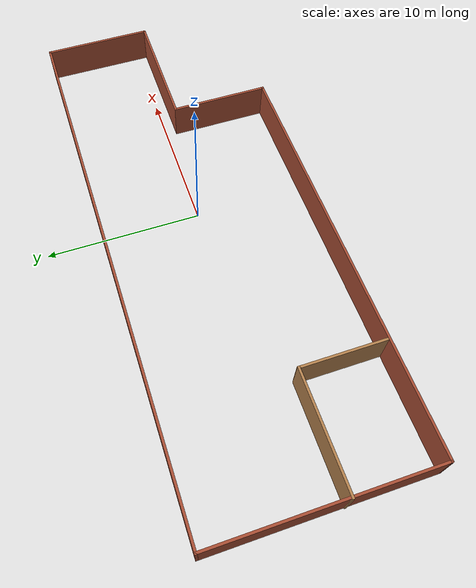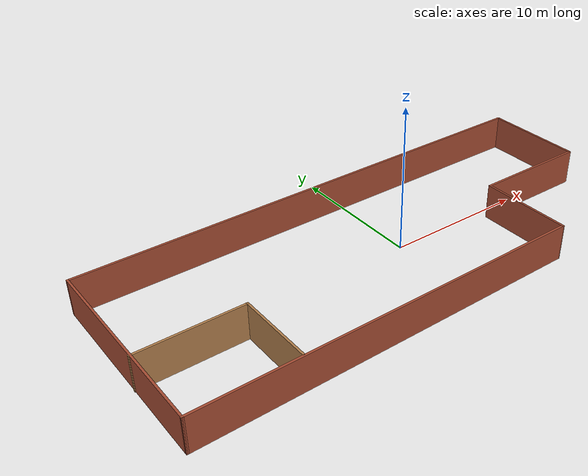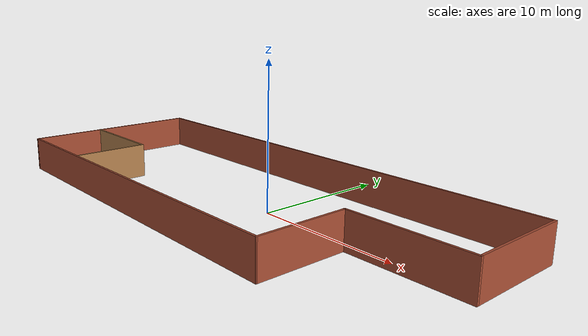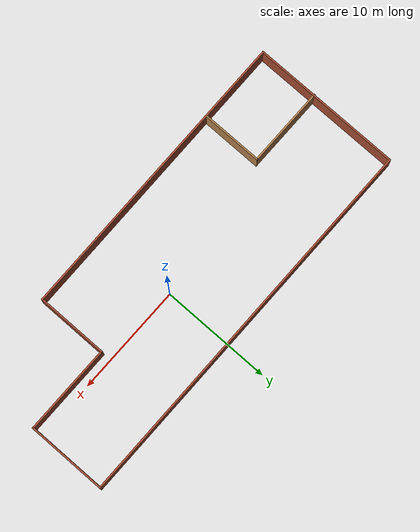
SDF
<?xml version='1.0'?>
<sdf version='1.6'>
  <model name='building2'>
    <pose frame=''>-2.21683 -0.459701 0 0 -0 0</pose>
    <link name='Wall_0'>
      <collision name='Wall_0_Collision'>
        <geometry>
          <box>
            <size>13.75 0.15 2.5</size>
          </box>
        </geometry>
        <pose frame=''>0 0 1.25 0 -0 0</pose>
      </collision>
      <visual name='Wall_0_Visual'>
        <pose frame=''>0 0 1.25 0 -0 0</pose>
        <geometry>
          <box>
            <size>13.75 0.15 2.5</size>
          </box>
        </geometry>
        <material>
          <script>
            <uri>file://media/materials/scripts/gazebo.material</uri>
            <name>Gazebo/Bricks</name>
          </script>
          <ambient>1 1 1 1</ambient>
        </material>
        <meta>
          <layer>0</layer>
        </meta>
      </visual>
      <pose frame=''>-17.5267 0.000207 0 0 -0 1.5708</pose>
    </link>
    <link name='Wall_1'>
      <collision name='Wall_1_Collision'>
        <geometry>
          <box>
            <size>35.25 0.15 2.5</size>
          </box>
        </geometry>
        <pose frame=''>0 0 1.25 0 -0 0</pose>
      </collision>
      <visual name='Wall_1_Visual'>
        <pose frame=''>0 0 1.25 0 -0 0</pose>
        <geometry>
          <box>
            <size>35.25 0.15 2.5</size>
          </box>
        </geometry>
        <material>
          <script>
            <uri>file://media/materials/scripts/gazebo.material</uri>
            <name>Gazebo/Bricks</name>
          </script>
          <ambient>1 1 1 1</ambient>
        </material>
        <meta>
          <layer>0</layer>
        </meta>
      </visual>
      <pose frame=''>0.023261 6.80021 0 0 -0 0</pose>
    </link>
    <link name='Wall_2'>
      <collision name='Wall_2_Collision'>
        <geometry>
          <box>
            <size>7.25 0.15 2.5</size>
          </box>
        </geometry>
        <pose frame=''>0 0 1.25 0 -0 0</pose>
      </collision>
      <visual name='Wall_2_Visual'>
        <pose frame=''>0 0 1.25 0 -0 0</pose>
        <geometry>
          <box>
            <size>7.25 0.15 2.5</size>
          </box>
        </geometry>
        <material>
          <script>
            <uri>file://media/materials/scripts/gazebo.material</uri>
            <name>Gazebo/Bricks</name>
          </script>
          <ambient>1 1 1 1</ambient>
        </material>
        <meta>
          <layer>0</layer>
        </meta>
      </visual>
      <pose frame=''>17.5733 3.25021 0 0 -0 -1.5708</pose>
    </link>
    <link name='Wall_3'>
      <collision name='Wall_3_Collision'>
        <geometry>
          <box>
            <size>8.25 0.15 2.5</size>
          </box>
        </geometry>
        <pose frame=''>0 0 1.25 0 -0 0</pose>
      </collision>
      <visual name='Wall_3_Visual'>
        <pose frame=''>0 0 1.25 0 -0 0</pose>
        <geometry>
          <box>
            <size>8.25 0.15 2.5</size>
          </box>
        </geometry>
        <material>
          <script>
            <uri>file://media/materials/scripts/gazebo.material</uri>
            <name>Gazebo/Bricks</name>
          </script>
          <ambient>1 1 1 1</ambient>
        </material>
        <meta>
          <layer>0</layer>
        </meta>
      </visual>
      <pose frame=''>13.5233 -0.299793 0 0 -0 3.14159</pose>
    </link>
    <link name='Wall_4'>
      <collision name='Wall_4_Collision'>
        <geometry>
          <box>
            <size>6.5 0.15 2.5</size>
          </box>
        </geometry>
        <pose frame=''>0 0 1.25 0 -0 0</pose>
      </collision>
      <visual name='Wall_4_Visual'>
        <pose frame=''>0 0 1.25 0 -0 0</pose>
        <geometry>
          <box>
            <size>6.5 0.15 2.5</size>
          </box>
        </geometry>
        <material>
          <script>
            <uri>file://media/materials/scripts/gazebo.material</uri>
            <name>Gazebo/Bricks</name>
          </script>
          <ambient>1 1 1 1</ambient>
        </material>
        <meta>
          <layer>0</layer>
        </meta>
      </visual>
      <pose frame=''>9.47326 -3.47479 0 0 -0 -1.5708</pose>
    </link>
    <link name='Wall_5'>
      <collision name='Wall_5_Collision'>
        <geometry>
          <box>
            <size>27.1504 0.15 2.5</size>
          </box>
        </geometry>
        <pose frame=''>0 0 1.25 0 -0 0</pose>
      </collision>
      <visual name='Wall_5_Visual'>
        <pose frame=''>0 0 1.25 0 -0 0</pose>
        <geometry>
          <box>
            <size>27.1504 0.15 2.5</size>
          </box>
        </geometry>
        <material>
          <script>
            <uri>file://media/materials/scripts/gazebo.material</uri>
            <name>Gazebo/Bricks</name>
          </script>
          <ambient>1 1 1 1</ambient>
        </material>
        <meta>
          <layer>0</layer>
        </meta>
      </visual>
      <pose frame=''>-4.02674 -6.72479 0 0 -0 -3.13604</pose>
    </link>
    <link name='Wall_7'>
      <collision name='Wall_7_Collision'>
        <geometry>
          <box>
            <size>7.25 0.15 2.5</size>
          </box>
        </geometry>
        <pose frame=''>0 0 1.25 0 -0 0</pose>
      </collision>
      <visual name='Wall_7_Visual'>
        <pose frame=''>0 0 1.25 0 -0 0</pose>
        <geometry>
          <box>
            <size>7.25 0.15 2.5</size>
          </box>
        </geometry>
        <material>
          <script>
            <uri>file://media/materials/scripts/gazebo.material</uri>
            <name>Gazebo/Wood</name>
          </script>
          <ambient>1 1 1 1</ambient>
        </material>
        <meta>
          <layer>0</layer>
        </meta>
      </visual>
      <pose frame=''>-14.0233 -1.30997 0 0 -0 0</pose>
    </link>
    <link name='Wall_8'>
      <collision name='Wall_8_Collision'>
        <geometry>
          <box>
            <size>5.5 0.15 2.5</size>
          </box>
        </geometry>
        <pose frame=''>0 0 1.25 0 -0 0</pose>
      </collision>
      <visual name='Wall_8_Visual'>
        <pose frame=''>0 0 1.25 0 -0 0</pose>
        <geometry>
          <box>
            <size>5.5 0.15 2.5</size>
          </box>
        </geometry>
        <material>
          <script>
            <uri>file://media/materials/scripts/gazebo.material</uri>
            <name>Gazebo/Wood</name>
          </script>
          <ambient>1 1 1 1</ambient>
        </material>
        <meta>
          <layer>0</layer>
        </meta>
      </visual>
      <pose frame=''>-10.4733 -3.98497 0 0 -0 -1.5708</pose>
    </link>
    <static>1</static>
  </model>
</sdf>
